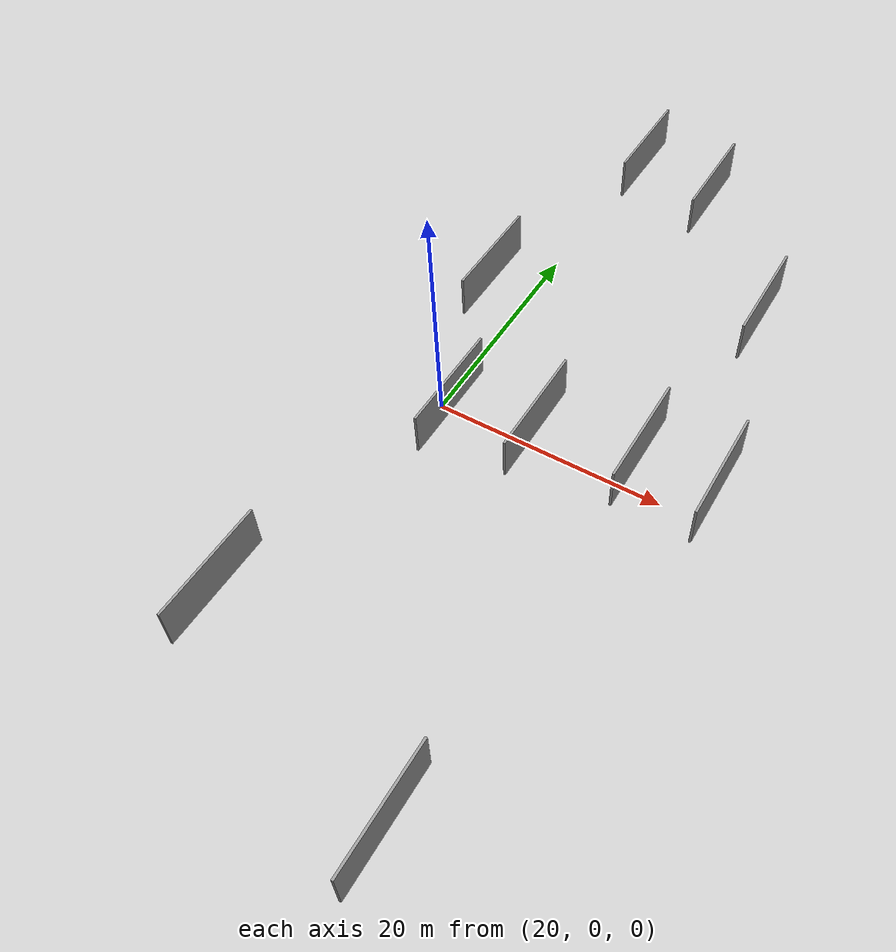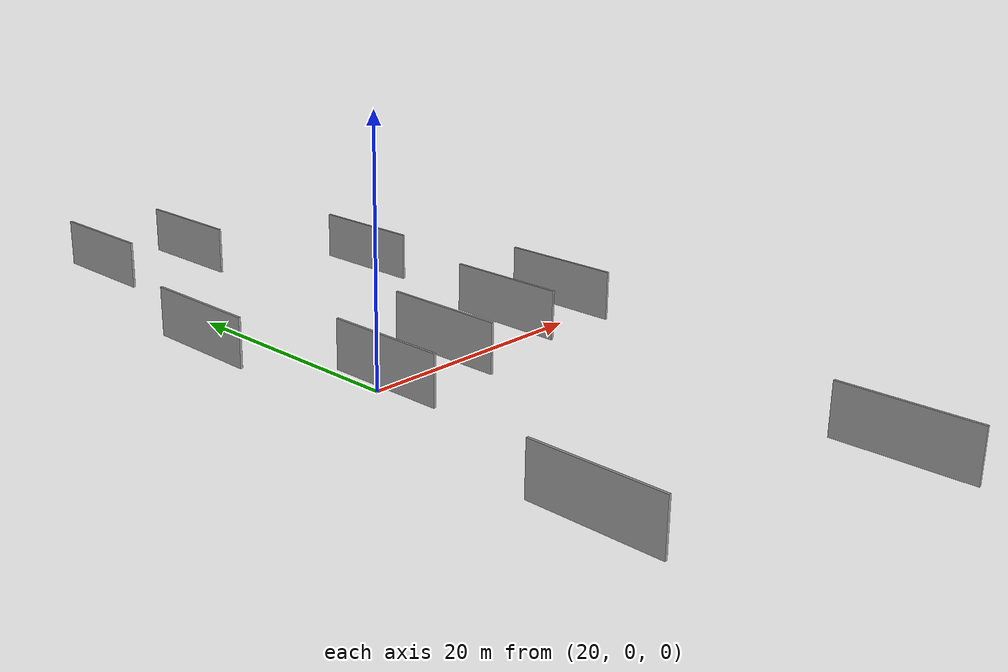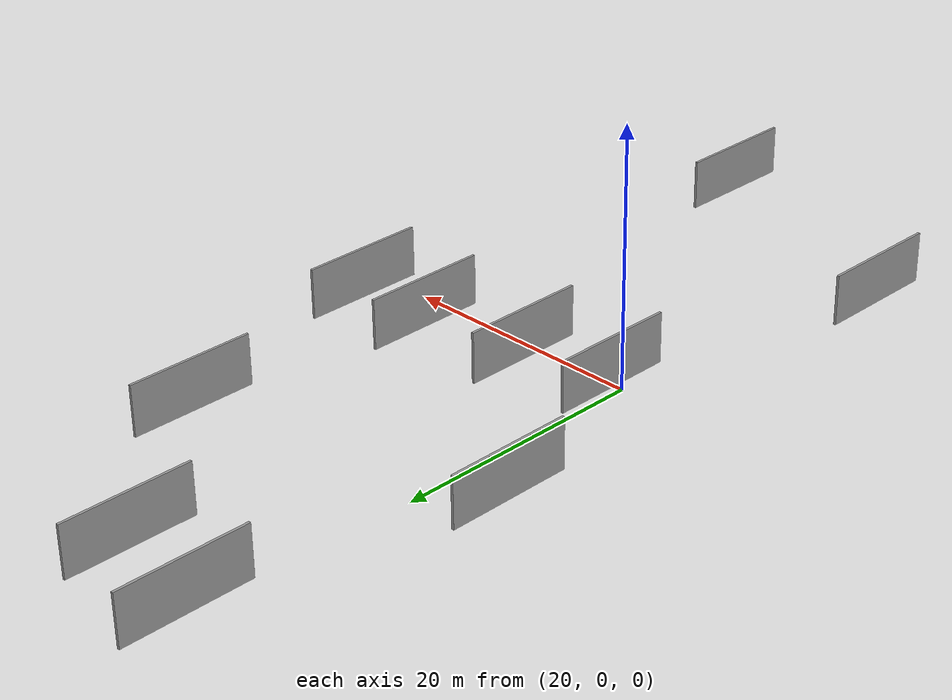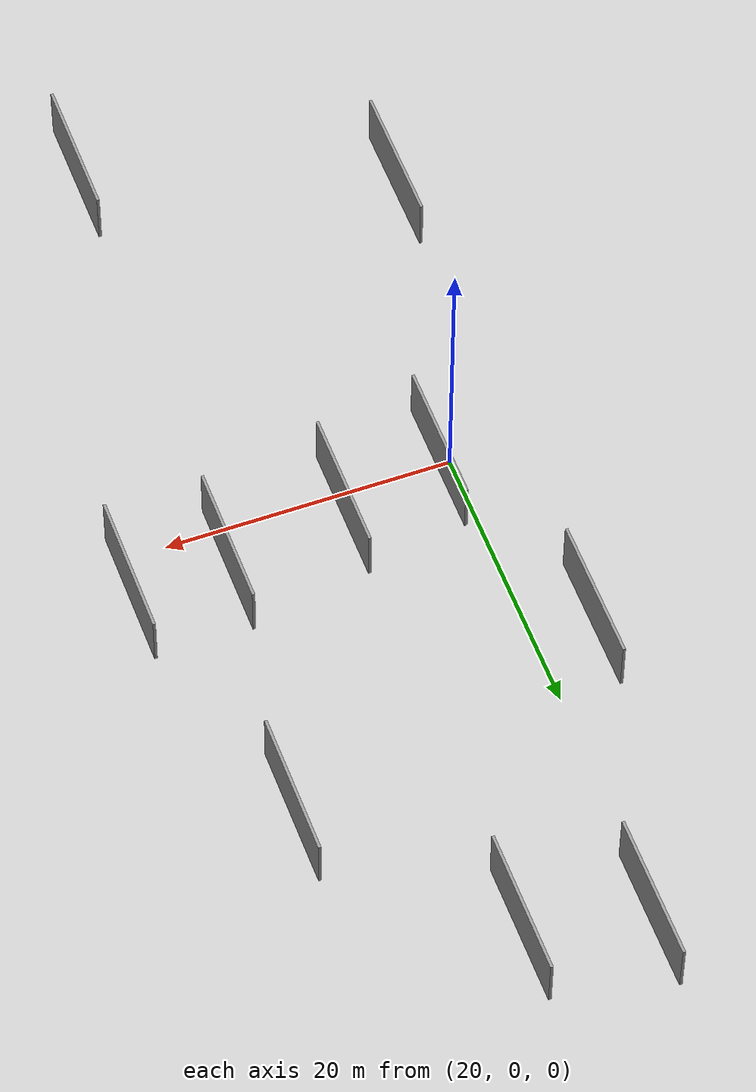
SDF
<sdf version="1.6">
 <world name="default">
  <scene>
   <sky><clouds><speed>12</speed></clouds></sky>
   <ambient>0.4 0.4 0.4 1</ambient>
   <background>0.7 0.7 0.7 1</background>
   <shadows>1</shadows>
  </scene>
  <gravity>0 0 -9.8066</gravity>
  <magnetic_field>6e-06 2.3e-05 -4.2e-05</magnetic_field>
  <physics default="0" name="default_physics" type="ode">
   <ode>
    <solver>
     <type>quick</type>
     <iters>10</iters>
     <sor>1.0</sor>
     <use_dynamic_moi_rescaling>0</use_dynamic_moi_rescaling>
    </solver>
    <constraints>
     <cfm>0</cfm>
     <erp>0.2</erp>
     <contact_max_correcting_vel>100</contact_max_correcting_vel>
     <contact_surface_layer>0.001</contact_surface_layer>
    </constraints>
   </ode>
   <max_step_size>0.004</max_step_size>
   <real_time_factor>1</real_time_factor>
   <real_time_update_rate>250</real_time_update_rate>
  </physics>
  <light name="sun" type="directional">
   <pose>0 0 10 0 0 0</pose>
   <diffuse>0.8 0.8 0.8 1</diffuse>
   <specular>0.2 0.2 0.2 1</specular>
   <attenuation>
    <range>1000</range>
    <constant>0.9</constant>
    <linear>0.01</linear>
    <quadratic>0.001</quadratic>
   </attenuation>
   <direction>-0.5 0.1 -0.9</direction>
  </light>
  <model name="grey_wall_1">
   <static>1</static>
   <pose>36.6637 3.0422 0.0 0.000000 0.000000 1.570796</pose>
   <link name="link">
    <pose>0 0 2.00 0 0 0</pose>
    <collision name="collision"><geometry><box><size>10.00 0.2 4.00</size></box></geometry></collision>
    <visual name="visual">
     <cast_shadows>0</cast_shadows>
     <geometry><box><size>10.00 0.2 4.00</size></box></geometry>
     <material>
      <script>
       <uri>model://grey_wall/materials/scripts</uri>
       <uri>model://grey_wall/materials/textures</uri>
       <name>vrc/grey_wall</name>
      </script>
     </material>
    </visual>
   </link>
  </model>
  <model name="grey_wall_2">
   <static>1</static>
   <pose>43.4098 3.0088 0.0 0.000000 0.000000 1.570796</pose>
   <link name="link">
    <pose>0 0 2.00 0 0 0</pose>
    <collision name="collision"><geometry><box><size>10.00 0.2 4.00</size></box></geometry></collision>
    <visual name="visual">
     <cast_shadows>0</cast_shadows>
     <geometry><box><size>10.00 0.2 4.00</size></box></geometry>
     <material>
      <script>
       <uri>model://grey_wall/materials/scripts</uri>
       <uri>model://grey_wall/materials/textures</uri>
       <name>vrc/grey_wall</name>
      </script>
     </material>
    </visual>
   </link>
  </model>
  <model name="grey_wall_3">
   <static>1</static>
   <pose>20.7568 37.1271 0.0 0.000000 0.000000 1.570796</pose>
   <link name="link">
    <pose>0 0 2.00 0 0 0</pose>
    <collision name="collision"><geometry><box><size>10.00 0.2 4.00</size></box></geometry></collision>
    <visual name="visual">
     <cast_shadows>0</cast_shadows>
     <geometry><box><size>10.00 0.2 4.00</size></box></geometry>
     <material>
      <script>
       <uri>model://grey_wall/materials/scripts</uri>
       <uri>model://grey_wall/materials/textures</uri>
       <name>vrc/grey_wall</name>
      </script>
     </material>
    </visual>
   </link>
  </model>
  <model name="grey_wall_4">
   <static>1</static>
   <pose>28.7623 35.3013 0.0 0.000000 0.000000 1.570796</pose>
   <link name="link">
    <pose>0 0 2.00 0 0 0</pose>
    <collision name="collision"><geometry><box><size>10.00 0.2 4.00</size></box></geometry></collision>
    <visual name="visual">
     <cast_shadows>0</cast_shadows>
     <geometry><box><size>10.00 0.2 4.00</size></box></geometry>
     <material>
      <script>
       <uri>model://grey_wall/materials/scripts</uri>
       <uri>model://grey_wall/materials/textures</uri>
       <name>vrc/grey_wall</name>
      </script>
     </material>
    </visual>
   </link>
  </model>
  <model name="grey_wall_5">
   <static>1</static>
   <pose>35.7233 -31.1304 0.0 0.000000 0.000000 1.570796</pose>
   <link name="link">
    <pose>0 0 2.00 0 0 0</pose>
    <collision name="collision"><geometry><box><size>10.00 0.2 4.00</size></box></geometry></collision>
    <visual name="visual">
     <cast_shadows>0</cast_shadows>
     <geometry><box><size>10.00 0.2 4.00</size></box></geometry>
     <material>
      <script>
       <uri>model://grey_wall/materials/scripts</uri>
       <uri>model://grey_wall/materials/textures</uri>
       <name>vrc/grey_wall</name>
      </script>
     </material>
    </visual>
   </link>
  </model>
  <model name="grey_wall_6">
   <static>1</static>
   <pose>15.2607 -22.9923 0.0 0.000000 0.000000 1.570796</pose>
   <link name="link">
    <pose>0 0 2.00 0 0 0</pose>
    <collision name="collision"><geometry><box><size>10.00 0.2 4.00</size></box></geometry></collision>
    <visual name="visual">
     <cast_shadows>0</cast_shadows>
     <geometry><box><size>10.00 0.2 4.00</size></box></geometry>
     <material>
      <script>
       <uri>model://grey_wall/materials/scripts</uri>
       <uri>model://grey_wall/materials/textures</uri>
       <name>vrc/grey_wall</name>
      </script>
     </material>
    </visual>
   </link>
  </model>
  <model name="grey_wall_7">
   <static>1</static>
   <pose>20.8350 0.1337 0.0 0.000000 0.000000 1.570796</pose>
   <link name="link">
    <pose>0 0 2.00 0 0 0</pose>
    <collision name="collision"><geometry><box><size>10.00 0.2 4.00</size></box></geometry></collision>
    <visual name="visual">
     <cast_shadows>0</cast_shadows>
     <geometry><box><size>10.00 0.2 4.00</size></box></geometry>
     <material>
      <script>
       <uri>model://grey_wall/materials/scripts</uri>
       <uri>model://grey_wall/materials/textures</uri>
       <name>vrc/grey_wall</name>
      </script>
     </material>
    </visual>
   </link>
  </model>
  <model name="grey_wall_8">
   <static>1</static>
   <pose>39.1718 22.3685 0.0 0.000000 0.000000 1.570796</pose>
   <link name="link">
    <pose>0 0 2.00 0 0 0</pose>
    <collision name="collision"><geometry><box><size>10.00 0.2 4.00</size></box></geometry></collision>
    <visual name="visual">
     <cast_shadows>0</cast_shadows>
     <geometry><box><size>10.00 0.2 4.00</size></box></geometry>
     <material>
      <script>
       <uri>model://grey_wall/materials/scripts</uri>
       <uri>model://grey_wall/materials/textures</uri>
       <name>vrc/grey_wall</name>
      </script>
     </material>
    </visual>
   </link>
  </model>
  <model name="grey_wall_9">
   <static>1</static>
   <pose>28.0971 1.5186 0.0 0.000000 0.000000 1.570796</pose>
   <link name="link">
    <pose>0 0 2.00 0 0 0</pose>
    <collision name="collision"><geometry><box><size>10.00 0.2 4.00</size></box></geometry></collision>
    <visual name="visual">
     <cast_shadows>0</cast_shadows>
     <geometry><box><size>10.00 0.2 4.00</size></box></geometry>
     <material>
      <script>
       <uri>model://grey_wall/materials/scripts</uri>
       <uri>model://grey_wall/materials/textures</uri>
       <name>vrc/grey_wall</name>
      </script>
     </material>
    </visual>
   </link>
  </model>
  <model name="grey_wall_10">
   <static>1</static>
   <pose>15.8605 15.2121 0.0 0.000000 0.000000 1.570796</pose>
   <link name="link">
    <pose>0 0 2.00 0 0 0</pose>
    <collision name="collision"><geometry><box><size>10.00 0.2 4.00</size></box></geometry></collision>
    <visual name="visual">
     <cast_shadows>0</cast_shadows>
     <geometry><box><size>10.00 0.2 4.00</size></box></geometry>
     <material>
      <script>
       <uri>model://grey_wall/materials/scripts</uri>
       <uri>model://grey_wall/materials/textures</uri>
       <name>vrc/grey_wall</name>
      </script>
     </material>
    </visual>
   </link>
  </model>
 </world>
</sdf>
